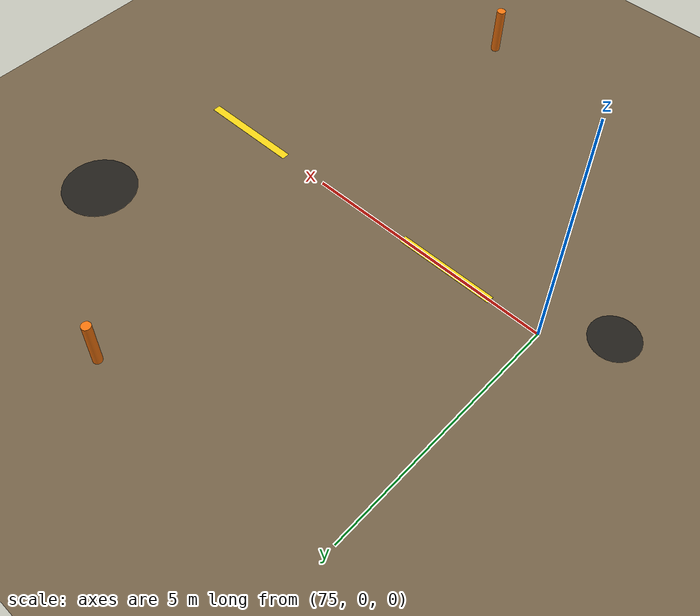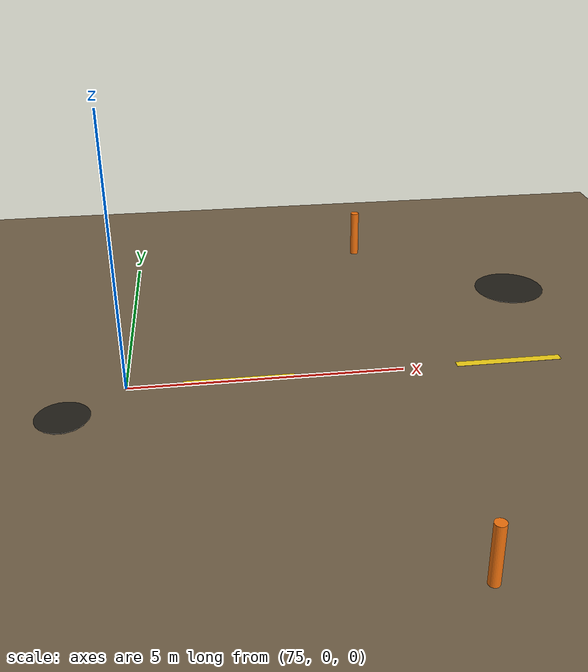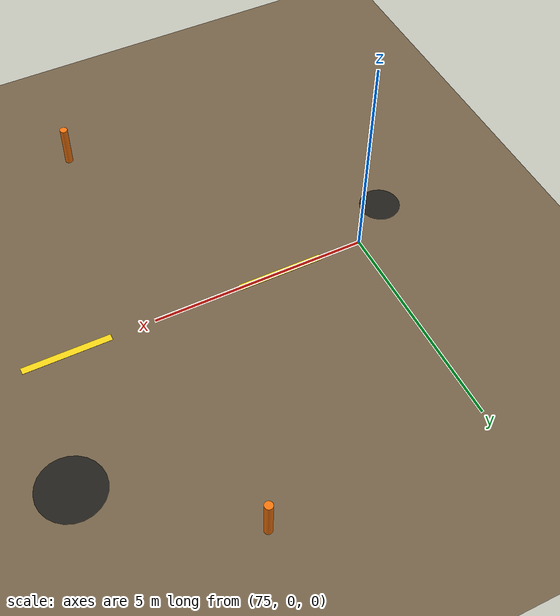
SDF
<sdf version="1.6">
 <world name="pothole_road">
  <include><uri>model://sun</uri></include>
  <model name="ground">
   <static>true</static>
   <link name="link">
    <collision name="c">
     <geometry><plane><normal>0 0 1</normal><size>400 400</size></plane></geometry>
     <surface><friction><ode><mu>1.0</mu><mu2>1.0</mu2></ode></friction></surface>
    </collision>
    <visual name="v">
     <geometry><plane><normal>0 0 1</normal><size>400 400</size></plane></geometry>
     <material><ambient>0.35 0.30 0.22 1</ambient><diffuse>0.45 0.38 0.28 1</diffuse></material>
    </visual>
   </link>
  </model>
  <model name="lane_dash_15">
   <static>true</static>
   <pose>77.0 0 0.0210 0 0 0</pose>
   <link name="link">
    <visual name="v">
     <geometry><box><size>2.0 0.16 0.002</size></box></geometry>
     <material><ambient>0.75 0.65 0.05 1</ambient><diffuse>0.95 0.82 0.08 1</diffuse></material>
    </visual>
   </link>
  </model>
  <model name="lane_dash_16">
   <static>true</static>
   <pose>82.0 0 0.0210 0 0 0</pose>
   <link name="link">
    <visual name="v">
     <geometry><box><size>2.0 0.16 0.002</size></box></geometry>
     <material><ambient>0.75 0.65 0.05 1</ambient><diffuse>0.95 0.82 0.08 1</diffuse></material>
    </visual>
   </link>
  </model>
  <model name="pothole_8">
   <static>true</static>
   <pose>74.0 -0.8 0.02 0 0 0</pose>
   <link name="link">
    <visual name="floor">
     <pose>0 0 -0.0700 0 0 0</pose>
     <geometry><cylinder><radius>0.420</radius><length>0.004</length></cylinder></geometry>
     <material>
      <ambient>0.03 0.025 0.02 1</ambient>
      <diffuse>0.05 0.04 0.03 1</diffuse>
      <specular>0 0 0 1</specular>
     </material>
    </visual>
    <collision name="floor_c">
     <pose>0 0 -0.0700 0 0 0</pose>
     <geometry><cylinder><radius>0.420</radius><length>0.004</length></cylinder></geometry>
    </collision>
    <visual name="wall_0">
     <pose>0.4200 0.0000 -0.0350 0 0 0.0000</pose>
     <geometry><box><size>0.02 0.2062 0.0700</size></box></geometry>
     <material><ambient>0.06 0.05 0.04 1</ambient><diffuse>0.08 0.07 0.05 1</diffuse></material>
    </visual>
    <visual name="wall_1">
     <pose>0.3880 0.1607 -0.0350 0 0 0.3927</pose>
     <geometry><box><size>0.02 0.2062 0.0700</size></box></geometry>
     <material><ambient>0.06 0.05 0.04 1</ambient><diffuse>0.08 0.07 0.05 1</diffuse></material>
    </visual>
    <visual name="wall_2">
     <pose>0.2970 0.2970 -0.0350 0 0 0.7854</pose>
     <geometry><box><size>0.02 0.2062 0.0700</size></box></geometry>
     <material><ambient>0.06 0.05 0.04 1</ambient><diffuse>0.08 0.07 0.05 1</diffuse></material>
    </visual>
    <visual name="wall_3">
     <pose>0.1607 0.3880 -0.0350 0 0 1.1781</pose>
     <geometry><box><size>0.02 0.2062 0.0700</size></box></geometry>
     <material><ambient>0.06 0.05 0.04 1</ambient><diffuse>0.08 0.07 0.05 1</diffuse></material>
    </visual>
    <visual name="wall_4">
     <pose>0.0000 0.4200 -0.0350 0 0 1.5708</pose>
     <geometry><box><size>0.02 0.2062 0.0700</size></box></geometry>
     <material><ambient>0.06 0.05 0.04 1</ambient><diffuse>0.08 0.07 0.05 1</diffuse></material>
    </visual>
    <visual name="wall_5">
     <pose>-0.1607 0.3880 -0.0350 0 0 1.9635</pose>
     <geometry><box><size>0.02 0.2062 0.0700</size></box></geometry>
     <material><ambient>0.06 0.05 0.04 1</ambient><diffuse>0.08 0.07 0.05 1</diffuse></material>
    </visual>
    <visual name="wall_6">
     <pose>-0.2970 0.2970 -0.0350 0 0 2.3562</pose>
     <geometry><box><size>0.02 0.2062 0.0700</size></box></geometry>
     <material><ambient>0.06 0.05 0.04 1</ambient><diffuse>0.08 0.07 0.05 1</diffuse></material>
    </visual>
    <visual name="wall_7">
     <pose>-0.3880 0.1607 -0.0350 0 0 2.7489</pose>
     <geometry><box><size>0.02 0.2062 0.0700</size></box></geometry>
     <material><ambient>0.06 0.05 0.04 1</ambient><diffuse>0.08 0.07 0.05 1</diffuse></material>
    </visual>
    <visual name="wall_8">
     <pose>-0.4200 0.0000 -0.0350 0 0 3.1416</pose>
     <geometry><box><size>0.02 0.2062 0.0700</size></box></geometry>
     <material><ambient>0.06 0.05 0.04 1</ambient><diffuse>0.08 0.07 0.05 1</diffuse></material>
    </visual>
    <visual name="wall_9">
     <pose>-0.3880 -0.1607 -0.0350 0 0 3.5343</pose>
     <geometry><box><size>0.02 0.2062 0.0700</size></box></geometry>
     <material><ambient>0.06 0.05 0.04 1</ambient><diffuse>0.08 0.07 0.05 1</diffuse></material>
    </visual>
    <visual name="wall_10">
     <pose>-0.2970 -0.2970 -0.0350 0 0 3.9270</pose>
     <geometry><box><size>0.02 0.2062 0.0700</size></box></geometry>
     <material><ambient>0.06 0.05 0.04 1</ambient><diffuse>0.08 0.07 0.05 1</diffuse></material>
    </visual>
    <visual name="wall_11">
     <pose>-0.1607 -0.3880 -0.0350 0 0 4.3197</pose>
     <geometry><box><size>0.02 0.2062 0.0700</size></box></geometry>
     <material><ambient>0.06 0.05 0.04 1</ambient><diffuse>0.08 0.07 0.05 1</diffuse></material>
    </visual>
    <visual name="wall_12">
     <pose>-0.0000 -0.4200 -0.0350 0 0 4.7124</pose>
     <geometry><box><size>0.02 0.2062 0.0700</size></box></geometry>
     <material><ambient>0.06 0.05 0.04 1</ambient><diffuse>0.08 0.07 0.05 1</diffuse></material>
    </visual>
    <visual name="wall_13">
     <pose>0.1607 -0.3880 -0.0350 0 0 5.1051</pose>
     <geometry><box><size>0.02 0.2062 0.0700</size></box></geometry>
     <material><ambient>0.06 0.05 0.04 1</ambient><diffuse>0.08 0.07 0.05 1</diffuse></material>
    </visual>
    <visual name="wall_14">
     <pose>0.2970 -0.2970 -0.0350 0 0 5.4978</pose>
     <geometry><box><size>0.02 0.2062 0.0700</size></box></geometry>
     <material><ambient>0.06 0.05 0.04 1</ambient><diffuse>0.08 0.07 0.05 1</diffuse></material>
    </visual>
    <visual name="wall_15">
     <pose>0.3880 -0.1607 -0.0350 0 0 5.8905</pose>
     <geometry><box><size>0.02 0.2062 0.0700</size></box></geometry>
     <material><ambient>0.06 0.05 0.04 1</ambient><diffuse>0.08 0.07 0.05 1</diffuse></material>
    </visual>
    <visual name="rim">
     <pose>0 0 0.0025 0 0 0</pose>
     <geometry><cylinder><radius>0.470</radius><length>0.003</length></cylinder></geometry>
     <material><ambient>0.10 0.09 0.08 1</ambient><diffuse>0.13 0.12 0.10 1</diffuse></material>
    </visual>
   </link>
  </model>
  <model name="pothole_9">
   <static>true</static>
   <pose>83.0 3.0 0.02 0 0 0</pose>
   <link name="link">
    <visual name="floor">
     <pose>0 0 -0.1500 0 0 0</pose>
     <geometry><cylinder><radius>0.650</radius><length>0.004</length></cylinder></geometry>
     <material>
      <ambient>0.03 0.025 0.02 1</ambient>
      <diffuse>0.05 0.04 0.03 1</diffuse>
      <specular>0 0 0 1</specular>
     </material>
    </visual>
    <collision name="floor_c">
     <pose>0 0 -0.1500 0 0 0</pose>
     <geometry><cylinder><radius>0.650</radius><length>0.004</length></cylinder></geometry>
    </collision>
    <visual name="wall_0">
     <pose>0.6500 0.0000 -0.0750 0 0 0.0000</pose>
     <geometry><box><size>0.02 0.3191 0.1500</size></box></geometry>
     <material><ambient>0.06 0.05 0.04 1</ambient><diffuse>0.08 0.07 0.05 1</diffuse></material>
    </visual>
    <visual name="wall_1">
     <pose>0.6005 0.2487 -0.0750 0 0 0.3927</pose>
     <geometry><box><size>0.02 0.3191 0.1500</size></box></geometry>
     <material><ambient>0.06 0.05 0.04 1</ambient><diffuse>0.08 0.07 0.05 1</diffuse></material>
    </visual>
    <visual name="wall_2">
     <pose>0.4596 0.4596 -0.0750 0 0 0.7854</pose>
     <geometry><box><size>0.02 0.3191 0.1500</size></box></geometry>
     <material><ambient>0.06 0.05 0.04 1</ambient><diffuse>0.08 0.07 0.05 1</diffuse></material>
    </visual>
    <visual name="wall_3">
     <pose>0.2487 0.6005 -0.0750 0 0 1.1781</pose>
     <geometry><box><size>0.02 0.3191 0.1500</size></box></geometry>
     <material><ambient>0.06 0.05 0.04 1</ambient><diffuse>0.08 0.07 0.05 1</diffuse></material>
    </visual>
    <visual name="wall_4">
     <pose>0.0000 0.6500 -0.0750 0 0 1.5708</pose>
     <geometry><box><size>0.02 0.3191 0.1500</size></box></geometry>
     <material><ambient>0.06 0.05 0.04 1</ambient><diffuse>0.08 0.07 0.05 1</diffuse></material>
    </visual>
    <visual name="wall_5">
     <pose>-0.2487 0.6005 -0.0750 0 0 1.9635</pose>
     <geometry><box><size>0.02 0.3191 0.1500</size></box></geometry>
     <material><ambient>0.06 0.05 0.04 1</ambient><diffuse>0.08 0.07 0.05 1</diffuse></material>
    </visual>
    <visual name="wall_6">
     <pose>-0.4596 0.4596 -0.0750 0 0 2.3562</pose>
     <geometry><box><size>0.02 0.3191 0.1500</size></box></geometry>
     <material><ambient>0.06 0.05 0.04 1</ambient><diffuse>0.08 0.07 0.05 1</diffuse></material>
    </visual>
    <visual name="wall_7">
     <pose>-0.6005 0.2487 -0.0750 0 0 2.7489</pose>
     <geometry><box><size>0.02 0.3191 0.1500</size></box></geometry>
     <material><ambient>0.06 0.05 0.04 1</ambient><diffuse>0.08 0.07 0.05 1</diffuse></material>
    </visual>
    <visual name="wall_8">
     <pose>-0.6500 0.0000 -0.0750 0 0 3.1416</pose>
     <geometry><box><size>0.02 0.3191 0.1500</size></box></geometry>
     <material><ambient>0.06 0.05 0.04 1</ambient><diffuse>0.08 0.07 0.05 1</diffuse></material>
    </visual>
    <visual name="wall_9">
     <pose>-0.6005 -0.2487 -0.0750 0 0 3.5343</pose>
     <geometry><box><size>0.02 0.3191 0.1500</size></box></geometry>
     <material><ambient>0.06 0.05 0.04 1</ambient><diffuse>0.08 0.07 0.05 1</diffuse></material>
    </visual>
    <visual name="wall_10">
     <pose>-0.4596 -0.4596 -0.0750 0 0 3.9270</pose>
     <geometry><box><size>0.02 0.3191 0.1500</size></box></geometry>
     <material><ambient>0.06 0.05 0.04 1</ambient><diffuse>0.08 0.07 0.05 1</diffuse></material>
    </visual>
    <visual name="wall_11">
     <pose>-0.2487 -0.6005 -0.0750 0 0 4.3197</pose>
     <geometry><box><size>0.02 0.3191 0.1500</size></box></geometry>
     <material><ambient>0.06 0.05 0.04 1</ambient><diffuse>0.08 0.07 0.05 1</diffuse></material>
    </visual>
    <visual name="wall_12">
     <pose>-0.0000 -0.6500 -0.0750 0 0 4.7124</pose>
     <geometry><box><size>0.02 0.3191 0.1500</size></box></geometry>
     <material><ambient>0.06 0.05 0.04 1</ambient><diffuse>0.08 0.07 0.05 1</diffuse></material>
    </visual>
    <visual name="wall_13">
     <pose>0.2487 -0.6005 -0.0750 0 0 5.1051</pose>
     <geometry><box><size>0.02 0.3191 0.1500</size></box></geometry>
     <material><ambient>0.06 0.05 0.04 1</ambient><diffuse>0.08 0.07 0.05 1</diffuse></material>
    </visual>
    <visual name="wall_14">
     <pose>0.4596 -0.4596 -0.0750 0 0 5.4978</pose>
     <geometry><box><size>0.02 0.3191 0.1500</size></box></geometry>
     <material><ambient>0.06 0.05 0.04 1</ambient><diffuse>0.08 0.07 0.05 1</diffuse></material>
    </visual>
    <visual name="wall_15">
     <pose>0.6005 -0.2487 -0.0750 0 0 5.8905</pose>
     <geometry><box><size>0.02 0.3191 0.1500</size></box></geometry>
     <material><ambient>0.06 0.05 0.04 1</ambient><diffuse>0.08 0.07 0.05 1</diffuse></material>
    </visual>
    <visual name="rim">
     <pose>0 0 0.0025 0 0 0</pose>
     <geometry><cylinder><radius>0.728</radius><length>0.003</length></cylinder></geometry>
     <material><ambient>0.10 0.09 0.08 1</ambient><diffuse>0.13 0.12 0.10 1</diffuse></material>
    </visual>
   </link>
  </model>
  <model name="bollard_12">
   <static>true</static>
   <pose>80 5.4 0.5 0 0 0</pose>
   <link name="link">
    <collision name="c">
     <geometry><cylinder><radius>0.09</radius><length>1.0</length></cylinder></geometry>
    </collision>
    <visual name="v">
     <geometry><cylinder><radius>0.09</radius><length>1.0</length></cylinder></geometry>
     <material><ambient>0.8 0.35 0.0 1</ambient><diffuse>0.95 0.45 0.05 1</diffuse></material>
    </visual>
   </link>
  </model>
  <model name="bollard_13">
   <static>true</static>
   <pose>80 -5.4 0.5 0 0 0</pose>
   <link name="link">
    <collision name="c">
     <geometry><cylinder><radius>0.09</radius><length>1.0</length></cylinder></geometry>
    </collision>
    <visual name="v">
     <geometry><cylinder><radius>0.09</radius><length>1.0</length></cylinder></geometry>
     <material><ambient>0.8 0.35 0.0 1</ambient><diffuse>0.95 0.45 0.05 1</diffuse></material>
    </visual>
   </link>
  </model>
 </world>
</sdf>
